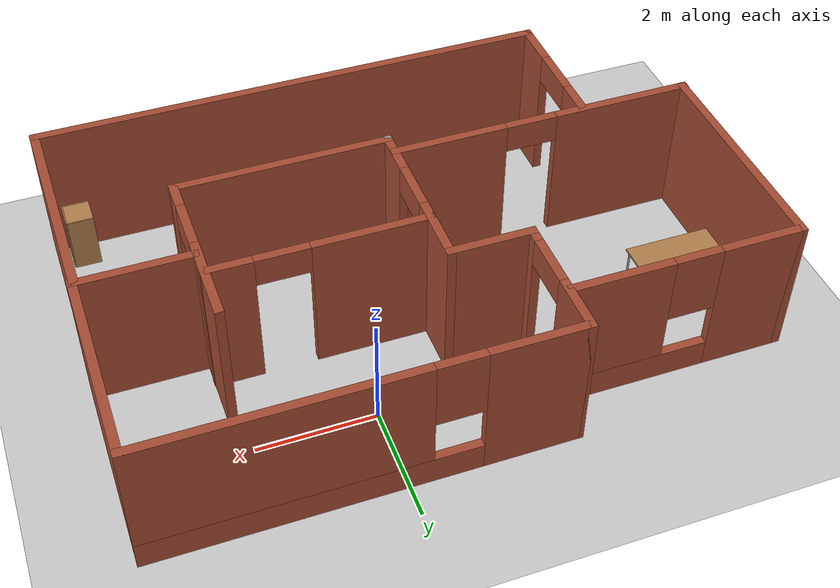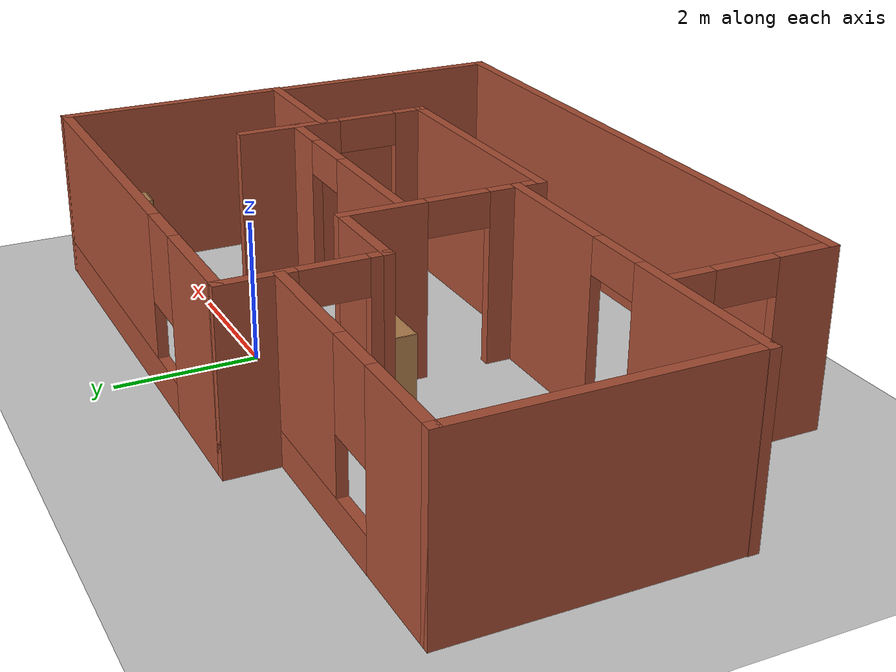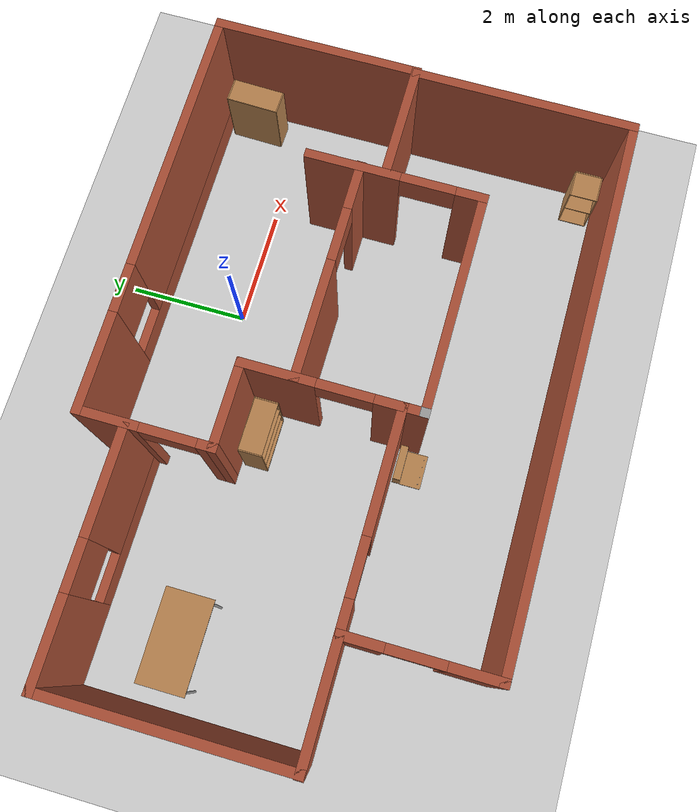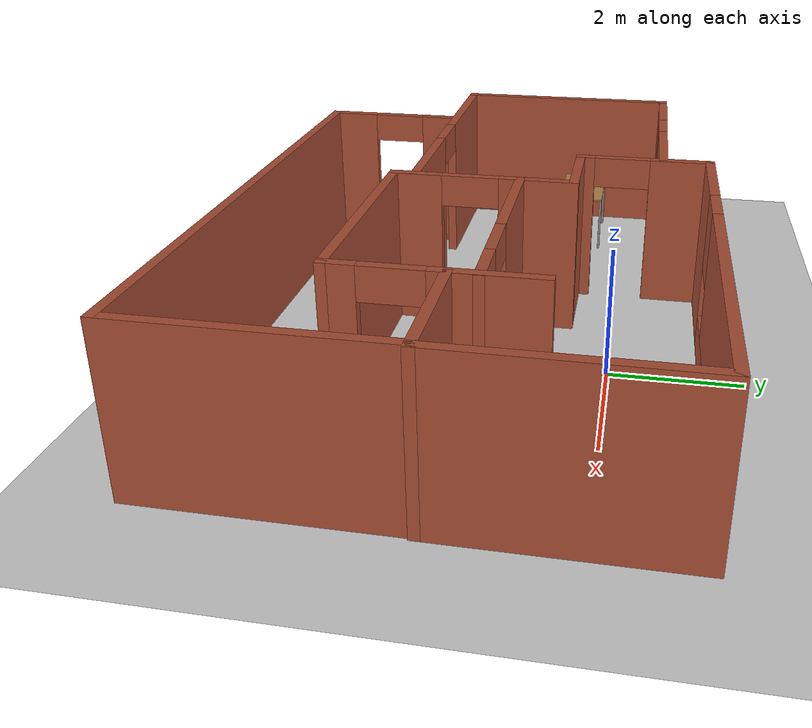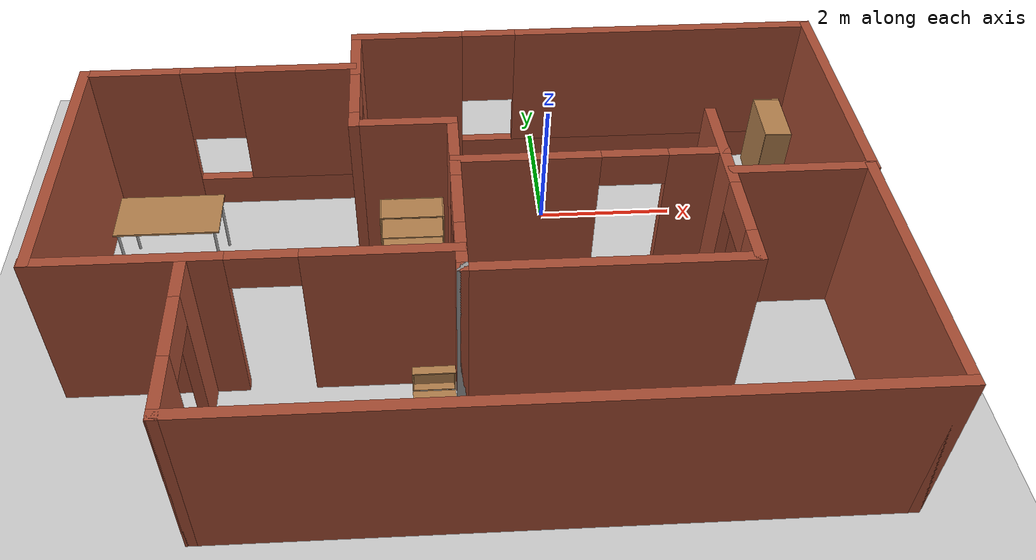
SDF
<sdf version="1.6">
 <world name="default">
  <light name="sun" type="directional">
   <pose>0 0 15 0 -0 0</pose>
   <diffuse>0.8 0.8 0.8 1</diffuse>
   <specular>0.2 0.2 0.2 1</specular>
   <attenuation>
    <range>1000</range>
    <constant>0.9</constant>
    <linear>0.01</linear>
    <quadratic>0.001</quadratic>
   </attenuation>
   <direction>-0.5 0.1 -0.9</direction>
  </light>
  <model name="ground_plane">
   <static>1</static>
   <link name="link">
    <collision name="collision">
     <geometry><plane><normal>0 0 1</normal><size>100 100</size></plane></geometry>
     <surface><friction><ode><mu>100</mu><mu2>50</mu2></ode></friction></surface>
    </collision>
    <visual name="visual">
     <transparency>1</transparency>
     <cast_shadows>0</cast_shadows>
     <geometry><plane><normal>0 0 1</normal><size>100 100</size></plane></geometry>
     <material>
      <script><uri>file://media/materials/scripts/gazebo.material</uri><name>Gazebo/Grey</name></script>
     </material>
    </visual>
   </link>
  </model>
  <gravity>0 0 -9.8</gravity>
  <magnetic_field>6e-06 2.3e-05 -4.2e-05</magnetic_field>
  <atmosphere type="adiabatic"/>
  <physics name="default_physics" default="0" type="ode">
   <max_step_size>0.001</max_step_size>
   <real_time_factor>1</real_time_factor>
   <real_time_update_rate>1000</real_time_update_rate>
  </physics>
  <scene><ambient>0.4 0.4 0.4 1</ambient><background>0.7 0.7 0.7 1</background><shadows>1</shadows></scene>
  <spherical_coordinates>
   <surface_model>EARTH_WGS84</surface_model>
   <latitude_deg>0</latitude_deg>
   <longitude_deg>0</longitude_deg>
   <elevation>0</elevation>
   <heading_deg>0</heading_deg>
  </spherical_coordinates>
  <model name="Rooms">
   <pose>-1.31501 -2.085 0 0 -0 0</pose>
   <link name="Wall_10">
    <collision name="Wall_10_Collision">
     <geometry><box><size>1.5 0.15 2.5</size></box></geometry>
     <pose>0 0 1.25 0 -0 0</pose>
    </collision>
    <visual name="Wall_10_Visual">
     <pose>0 0 1.25 0 -0 0</pose>
     <geometry><box><size>1.5 0.15 2.5</size></box></geometry>
     <material>
      <script><uri>file://media/materials/scripts/gazebo.material</uri><name>Gazebo/Bricks</name></script>
      <ambient>1 1 1 1</ambient>
     </material>
     <meta><layer>0</layer></meta>
    </visual>
    <pose>-0.789991 1.385 0 0 -0 3.14159</pose>
   </link>
   <link name="Wall_11">
    <pose>-1.46499 2.435 0 0 -0 1.5708</pose>
    <visual name="Wall_11_Visual_0">
     <pose>-0.9675 0 1.25 0 -0 0</pose>
     <geometry><box><size>0.315 0.15 2.5</size></box></geometry>
     <material>
      <script><uri>file://media/materials/scripts/gazebo.material</uri><name>Gazebo/Bricks</name></script>
      <ambient>1 1 1 1</ambient>
     </material>
     <meta><layer>0</layer></meta>
    </visual>
    <collision name="Wall_11_Collision_0">
     <geometry><box><size>0.315 0.15 2.5</size></box></geometry>
     <pose>-0.9675 0 1.25 0 -0 0</pose>
    </collision>
    <visual name="Wall_11_Visual_1">
     <pose>0.6075 0 1.25 0 -0 0</pose>
     <geometry><box><size>1.035 0.15 2.5</size></box></geometry>
     <material>
      <script><uri>file://media/materials/scripts/gazebo.material</uri><name>Gazebo/Bricks</name></script>
      <ambient>1 1 1 1</ambient>
     </material>
     <meta><layer>0</layer></meta>
    </visual>
    <collision name="Wall_11_Collision_1">
     <geometry><box><size>1.035 0.15 2.5</size></box></geometry>
     <pose>0.6075 0 1.25 0 -0 0</pose>
    </collision>
    <visual name="Wall_11_Visual_2">
     <pose>-0.36 0 2.25 0 -0 0</pose>
     <geometry><box><size>0.9 0.15 0.5</size></box></geometry>
     <material>
      <script><uri>file://media/materials/scripts/gazebo.material</uri><name>Gazebo/Bricks</name></script>
      <ambient>1 1 1 1</ambient>
     </material>
     <meta><layer>0</layer></meta>
    </visual>
    <collision name="Wall_11_Collision_2">
     <geometry><box><size>0.9 0.15 0.5</size></box></geometry>
     <pose>-0.36 0 2.25 0 -0 0</pose>
    </collision>
   </link>
   <link name="Wall_12">
    <pose>1.96001 3.485 0 0 -0 0</pose>
    <visual name="Wall_12_Visual_0">
     <pose>-2.6675 0 1.25 0 -0 0</pose>
     <geometry><box><size>1.665 0.15 2.5</size></box></geometry>
     <material>
      <script><uri>file://media/materials/scripts/gazebo.material</uri><name>Gazebo/Bricks</name></script>
      <ambient>1 1 1 1</ambient>
     </material>
     <meta><layer>0</layer></meta>
    </visual>
    <collision name="Wall_12_Collision_0">
     <geometry><box><size>1.665 0.15 2.5</size></box></geometry>
     <pose>-2.6675 0 1.25 0 -0 0</pose>
    </collision>
    <visual name="Wall_12_Visual_1">
     <pose>0.8325 0 0.25 0 -0 0</pose>
     <geometry><box><size>5.335 0.15 0.5</size></box></geometry>
     <material>
      <script><uri>file://media/materials/scripts/gazebo.material</uri><name>Gazebo/Bricks</name></script>
      <ambient>1 1 1 1</ambient>
     </material>
     <meta><layer>0</layer></meta>
    </visual>
    <collision name="Wall_12_Collision_1">
     <geometry><box><size>5.335 0.15 0.5</size></box></geometry>
     <pose>0.8325 0 0.25 0 -0 0</pose>
    </collision>
    <visual name="Wall_12_Visual_2">
     <pose>1.2325 0 1.5 0 -0 0</pose>
     <geometry><box><size>4.535 0.15 2</size></box></geometry>
     <material>
      <script><uri>file://media/materials/scripts/gazebo.material</uri><name>Gazebo/Bricks</name></script>
      <ambient>1 1 1 1</ambient>
     </material>
     <meta><layer>0</layer></meta>
    </visual>
    <collision name="Wall_12_Collision_2">
     <geometry><box><size>4.535 0.15 2</size></box></geometry>
     <pose>1.2325 0 1.5 0 -0 0</pose>
    </collision>
    <visual name="Wall_12_Visual_3">
     <pose>-1.435 0 1.9 0 -0 0</pose>
     <geometry><box><size>0.8 0.15 1.2</size></box></geometry>
     <material>
      <script><uri>file://media/materials/scripts/gazebo.material</uri><name>Gazebo/Bricks</name></script>
      <ambient>1 1 1 1</ambient>
     </material>
     <meta><layer>0</layer></meta>
    </visual>
    <collision name="Wall_12_Collision_3">
     <geometry><box><size>0.8 0.15 1.2</size></box></geometry>
     <pose>-1.435 0 1.9 0 -0 0</pose>
    </collision>
   </link>
   <link name="Wall_13">
    <collision name="Wall_13_Collision">
     <geometry><box><size>3.5 0.15 2.5</size></box></geometry>
     <pose>0 0 1.25 0 -0 0</pose>
    </collision>
    <visual name="Wall_13_Visual">
     <pose>0 0 1.25 0 -0 0</pose>
     <geometry><box><size>3.5 0.15 2.5</size></box></geometry>
     <material>
      <script><uri>file://media/materials/scripts/gazebo.material</uri><name>Gazebo/Bricks</name></script>
      <ambient>1 1 1 1</ambient>
     </material>
     <meta><layer>0</layer></meta>
    </visual>
    <pose>5.38501 1.81 0 0 0 -1.5708</pose>
   </link>
   <link name="Wall_14">
    <collision name="Wall_14_Collision">
     <geometry><box><size>2 0.15 2.5</size></box></geometry>
     <pose>0 0 1.25 0 -0 0</pose>
    </collision>
    <visual name="Wall_14_Visual">
     <pose>0 0 1.25 0 -0 0</pose>
     <geometry><box><size>2 0.15 2.5</size></box></geometry>
     <material>
      <script><uri>file://media/materials/scripts/gazebo.material</uri><name>Gazebo/Bricks</name></script>
      <ambient>1 1 1 1</ambient>
     </material>
     <meta><layer>0</layer></meta>
    </visual>
    <pose>4.46001 0.135 0 0 -0 3.14159</pose>
   </link>
   <link name="Wall_16">
    <pose>1.69501 0.545 0 0 -0 0</pose>
    <visual name="Wall_16_Visual_0">
     <pose>-0.8675 0 1.25 0 -0 0</pose>
     <geometry><box><size>2.015 0.15 2.5</size></box></geometry>
     <material>
      <script><uri>file://media/materials/scripts/gazebo.material</uri><name>Gazebo/Bricks</name></script>
      <ambient>1 1 1 1</ambient>
     </material>
     <meta><layer>0</layer></meta>
    </visual>
    <collision name="Wall_16_Collision_0">
     <geometry><box><size>2.015 0.15 2.5</size></box></geometry>
     <pose>-0.8675 0 1.25 0 -0 0</pose>
    </collision>
    <visual name="Wall_16_Visual_1">
     <pose>1.4575 0 1.25 0 -0 0</pose>
     <geometry><box><size>0.835 0.15 2.5</size></box></geometry>
     <material>
      <script><uri>file://media/materials/scripts/gazebo.material</uri><name>Gazebo/Bricks</name></script>
      <ambient>1 1 1 1</ambient>
     </material>
     <meta><layer>0</layer></meta>
    </visual>
    <collision name="Wall_16_Collision_1">
     <geometry><box><size>0.835 0.15 2.5</size></box></geometry>
     <pose>1.4575 0 1.25 0 -0 0</pose>
    </collision>
    <visual name="Wall_16_Visual_2">
     <pose>0.59 0 2.25 0 -0 0</pose>
     <geometry><box><size>0.9 0.15 0.5</size></box></geometry>
     <material>
      <script><uri>file://media/materials/scripts/gazebo.material</uri><name>Gazebo/Bricks</name></script>
      <ambient>1 1 1 1</ambient>
     </material>
     <meta><layer>0</layer></meta>
    </visual>
    <collision name="Wall_16_Collision_2">
     <geometry><box><size>0.9 0.15 0.5</size></box></geometry>
     <pose>0.59 0 2.25 0 -0 0</pose>
    </collision>
   </link>
   <link name="Wall_19">
    <pose>-2.75499 -1.125 0 0 -0 3.14159</pose>
    <visual name="Wall_19_Visual_0">
     <pose>-1.68751 0 1.25 0 -0 0</pose>
     <geometry><box><size>2.03502 0.15 2.5</size></box></geometry>
     <material>
      <script><uri>file://media/materials/scripts/gazebo.material</uri><name>Gazebo/Bricks</name></script>
      <ambient>1 1 1 1</ambient>
     </material>
     <meta><layer>0</layer></meta>
    </visual>
    <collision name="Wall_19_Collision_0">
     <geometry><box><size>2.03502 0.15 2.5</size></box></geometry>
     <pose>-1.68751 0 1.25 0 -0 0</pose>
    </collision>
    <visual name="Wall_19_Visual_1">
     <pose>1.46751 0 1.25 0 -0 0</pose>
     <geometry><box><size>2.47502 0.15 2.5</size></box></geometry>
     <material>
      <script><uri>file://media/materials/scripts/gazebo.material</uri><name>Gazebo/Bricks</name></script>
      <ambient>1 1 1 1</ambient>
     </material>
     <meta><layer>0</layer></meta>
    </visual>
    <collision name="Wall_19_Collision_1">
     <geometry><box><size>2.47502 0.15 2.5</size></box></geometry>
     <pose>1.46751 0 1.25 0 -0 0</pose>
    </collision>
    <visual name="Wall_19_Visual_2">
     <pose>-0.22 0 2.25 0 -0 0</pose>
     <geometry><box><size>0.9 0.15 0.5</size></box></geometry>
     <material>
      <script><uri>file://media/materials/scripts/gazebo.material</uri><name>Gazebo/Bricks</name></script>
      <ambient>1 1 1 1</ambient>
     </material>
     <meta><layer>0</layer></meta>
    </visual>
    <collision name="Wall_19_Collision_2">
     <geometry><box><size>0.9 0.15 0.5</size></box></geometry>
     <pose>-0.22 0 2.25 0 -0 0</pose>
    </collision>
   </link>
   <link name="Wall_2">
    <pose>3.48501 -0.04 0 0 0 -1.5708</pose>
    <visual name="Wall_2_Visual_0">
     <pose>-0.7125 0 1.25 0 -0 0</pose>
     <geometry><box><size>1.575 0.15 2.5</size></box></geometry>
     <material>
      <script><uri>file://media/materials/scripts/gazebo.material</uri><name>Gazebo/Bricks</name></script>
      <ambient>1 1 1 1</ambient>
     </material>
     <meta><layer>0</layer></meta>
    </visual>
    <collision name="Wall_2_Collision_0">
     <geometry><box><size>1.575 0.15 2.5</size></box></geometry>
     <pose>-0.7125 0 1.25 0 -0 0</pose>
    </collision>
    <visual name="Wall_2_Visual_1">
     <pose>1.2375 0 1.25 0 -0 0</pose>
     <geometry><box><size>0.525 0.15 2.5</size></box></geometry>
     <material>
      <script><uri>file://media/materials/scripts/gazebo.material</uri><name>Gazebo/Bricks</name></script>
      <ambient>1 1 1 1</ambient>
     </material>
     <meta><layer>0</layer></meta>
    </visual>
    <collision name="Wall_2_Collision_1">
     <geometry><box><size>0.525 0.15 2.5</size></box></geometry>
     <pose>1.2375 0 1.25 0 -0 0</pose>
    </collision>
    <visual name="Wall_2_Visual_2">
     <pose>0.525 0 2.25 0 -0 0</pose>
     <geometry><box><size>0.9 0.15 0.5</size></box></geometry>
     <material>
      <script><uri>file://media/materials/scripts/gazebo.material</uri><name>Gazebo/Bricks</name></script>
      <ambient>1 1 1 1</ambient>
     </material>
     <meta><layer>0</layer></meta>
    </visual>
    <collision name="Wall_2_Collision_2">
     <geometry><box><size>0.9 0.15 0.5</size></box></geometry>
     <pose>0.525 0 2.25 0 -0 0</pose>
    </collision>
   </link>
   <link name="Wall_20">
    <collision name="Wall_20_Collision">
     <geometry><box><size>4 0.15 2.5</size></box></geometry>
     <pose>0 0 1.25 0 -0 0</pose>
    </collision>
    <visual name="Wall_20_Visual">
     <pose>0 0 1.25 0 -0 0</pose>
     <geometry><box><size>4 0.15 2.5</size></box></geometry>
     <material>
      <script><uri>file://media/materials/scripts/gazebo.material</uri><name>Gazebo/Bricks</name></script>
      <ambient>1 1 1 1</ambient>
     </material>
     <meta><layer>0</layer></meta>
    </visual>
    <pose>-5.37499 0.81 0 0 -0 1.5708</pose>
   </link>
   <link name="Wall_22">
    <pose>-3.44999 2.735 0 0 -0 0</pose>
    <visual name="Wall_22_Visual_0">
     <pose>-1.2775 0 1.25 0 -0 0</pose>
     <geometry><box><size>1.445 0.15 2.5</size></box></geometry>
     <material>
      <script><uri>file://media/materials/scripts/gazebo.material</uri><name>Gazebo/Bricks</name></script>
      <ambient>1 1 1 1</ambient>
     </material>
     <meta><layer>0</layer></meta>
    </visual>
    <collision name="Wall_22_Collision_0">
     <geometry><box><size>1.445 0.15 2.5</size></box></geometry>
     <pose>-1.2775 0 1.25 0 -0 0</pose>
    </collision>
    <visual name="Wall_22_Visual_1">
     <pose>0.7225 0 0.25 0 -0 0</pose>
     <geometry><box><size>2.555 0.15 0.5</size></box></geometry>
     <material>
      <script><uri>file://media/materials/scripts/gazebo.material</uri><name>Gazebo/Bricks</name></script>
      <ambient>1 1 1 1</ambient>
     </material>
     <meta><layer>0</layer></meta>
    </visual>
    <collision name="Wall_22_Collision_1">
     <geometry><box><size>2.555 0.15 0.5</size></box></geometry>
     <pose>0.7225 0 0.25 0 -0 0</pose>
    </collision>
    <visual name="Wall_22_Visual_2">
     <pose>1.1225 0 1.5 0 -0 0</pose>
     <geometry><box><size>1.755 0.15 2</size></box></geometry>
     <material>
      <script><uri>file://media/materials/scripts/gazebo.material</uri><name>Gazebo/Bricks</name></script>
      <ambient>1 1 1 1</ambient>
     </material>
     <meta><layer>0</layer></meta>
    </visual>
    <collision name="Wall_22_Collision_2">
     <geometry><box><size>1.755 0.15 2</size></box></geometry>
     <pose>1.1225 0 1.5 0 -0 0</pose>
    </collision>
    <visual name="Wall_22_Visual_3">
     <pose>-0.155 0 1.9 0 -0 0</pose>
     <geometry><box><size>0.8 0.15 1.2</size></box></geometry>
     <material>
      <script><uri>file://media/materials/scripts/gazebo.material</uri><name>Gazebo/Bricks</name></script>
      <ambient>1 1 1 1</ambient>
     </material>
     <meta><layer>0</layer></meta>
    </visual>
    <collision name="Wall_22_Collision_3">
     <geometry><box><size>0.8 0.15 1.2</size></box></geometry>
     <pose>-0.155 0 1.9 0 -0 0</pose>
    </collision>
   </link>
   <link name="Wall_24">
    <pose>-3.49499 -2.31 0 0 0 -1.5708</pose>
    <visual name="Wall_24_Visual_0">
     <pose>-0.8925 0 1.25 0 -0 0</pose>
     <geometry><box><size>0.715 0.15 2.5</size></box></geometry>
     <material>
      <script><uri>file://media/materials/scripts/gazebo.material</uri><name>Gazebo/Bricks</name></script>
      <ambient>1 1 1 1</ambient>
     </material>
     <meta><layer>0</layer></meta>
    </visual>
    <collision name="Wall_24_Collision_0">
     <geometry><box><size>0.715 0.15 2.5</size></box></geometry>
     <pose>-0.8925 0 1.25 0 -0 0</pose>
    </collision>
    <visual name="Wall_24_Visual_1">
     <pose>0.8075 0 1.25 0 -0 0</pose>
     <geometry><box><size>0.885 0.15 2.5</size></box></geometry>
     <material>
      <script><uri>file://media/materials/scripts/gazebo.material</uri><name>Gazebo/Bricks</name></script>
      <ambient>1 1 1 1</ambient>
     </material>
     <meta><layer>0</layer></meta>
    </visual>
    <collision name="Wall_24_Collision_1">
     <geometry><box><size>0.885 0.15 2.5</size></box></geometry>
     <pose>0.8075 0 1.25 0 -0 0</pose>
    </collision>
    <visual name="Wall_24_Visual_2">
     <pose>-0.085 0 2.25 0 -0 0</pose>
     <geometry><box><size>0.9 0.15 0.5</size></box></geometry>
     <material>
      <script><uri>file://media/materials/scripts/gazebo.material</uri><name>Gazebo/Bricks</name></script>
      <ambient>1 1 1 1</ambient>
     </material>
     <meta><layer>0</layer></meta>
    </visual>
    <collision name="Wall_24_Collision_2">
     <geometry><box><size>0.9 0.15 0.5</size></box></geometry>
     <pose>-0.085 0 2.25 0 -0 0</pose>
    </collision>
   </link>
   <link name="Wall_25">
    <collision name="Wall_25_Collision">
     <geometry><box><size>9 0.15 2.5</size></box></geometry>
     <pose>0 0 1.25 0 -0 0</pose>
    </collision>
    <visual name="Wall_25_Visual">
     <pose>0 0 1.25 0 -0 0</pose>
     <geometry><box><size>9 0.15 2.5</size></box></geometry>
     <material>
      <script><uri>file://media/materials/scripts/gazebo.material</uri><name>Gazebo/Bricks</name></script>
      <ambient>1 1 1 1</ambient>
     </material>
     <meta><layer>0</layer></meta>
    </visual>
    <pose>0.930009 -3.485 0 0 -0 0</pose>
   </link>
   <link name="Wall_26">
    <collision name="Wall_26_Collision">
     <geometry><box><size>3.75 0.15 2.5</size></box></geometry>
     <pose>0 0 1.25 0 -0 0</pose>
    </collision>
    <visual name="Wall_26_Visual">
     <pose>0 0 1.25 0 -0 0</pose>
     <geometry><box><size>3.75 0.15 2.5</size></box></geometry>
     <material>
      <script><uri>file://media/materials/scripts/gazebo.material</uri><name>Gazebo/Bricks</name></script>
      <ambient>1 1 1 1</ambient>
     </material>
     <meta><layer>0</layer></meta>
    </visual>
    <pose>5.35501 -1.685 0 0 -0 1.5708</pose>
   </link>
   <link name="Wall_3">
    <collision name="Wall_3_Collision">
     <geometry><box><size>3.75 0.15 2.5</size></box></geometry>
     <pose>0 0 1.25 0 -0 0</pose>
    </collision>
    <visual name="Wall_3_Visual">
     <pose>0 0 1.25 0 -0 0</pose>
     <geometry><box><size>3.75 0.15 2.5</size></box></geometry>
     <material>
      <script><uri>file://media/materials/scripts/gazebo.material</uri><name>Gazebo/Bricks</name></script>
      <ambient>1 1 1 1</ambient>
     </material>
     <meta><layer>0</layer></meta>
    </visual>
    <pose>1.68501 -1.465 0 0 -0 3.14159</pose>
   </link>
   <link name="Wall_4">
    <collision name="Wall_4_Collision">
     <geometry><box><size>0.15 0.15 2.5</size></box></geometry>
     <pose>0 0 1.25 0 -0 0</pose>
    </collision>
    <visual name="Wall_4_Visual">
     <pose>0 0 1.25 0 -0 0</pose>
     <geometry><box><size>0.15 0.15 2.5</size></box></geometry>
     <material>
      <script><uri>file://media/materials/scripts/gazebo.material</uri><name>Gazebo/Grey</name></script>
      <ambient>1 1 1 1</ambient>
     </material>
     <meta><layer>0</layer></meta>
    </visual>
    <pose>-0.114991 -1.465 0 0 -0 0</pose>
   </link>
   <link name="Wall_5">
    <collision name="Wall_5_Collision">
     <geometry><box><size>0.15 0.15 2.5</size></box></geometry>
     <pose>0 0 1.25 0 -0 0</pose>
    </collision>
    <visual name="Wall_5_Visual">
     <pose>0 0 1.25 0 -0 0</pose>
     <geometry><box><size>0.15 0.15 2.5</size></box></geometry>
     <material>
      <script><uri>file://media/materials/scripts/gazebo.material</uri><name>Gazebo/Grey</name></script>
      <ambient>1 1 1 1</ambient>
     </material>
     <meta><layer>0</layer></meta>
    </visual>
    <pose>-0.114991 -1.465 0 0 -0 0</pose>
   </link>
   <link name="Wall_6">
    <collision name="Wall_6_Collision">
     <geometry><box><size>0.15 0.15 2.5</size></box></geometry>
     <pose>0 0 1.25 0 -0 0</pose>
    </collision>
    <visual name="Wall_6_Visual">
     <pose>0 0 1.25 0 -0 0</pose>
     <geometry><box><size>0.15 0.15 2.5</size></box></geometry>
     <material>
      <script><uri>file://media/materials/scripts/gazebo.material</uri><name>Gazebo/Grey</name></script>
      <ambient>1 1 1 1</ambient>
     </material>
     <meta><layer>0</layer></meta>
    </visual>
    <pose>-0.114991 -1.465 0 0 -0 0</pose>
   </link>
   <link name="Wall_8">
    <pose>-0.114991 -0.04 0 0 0 -1.5708</pose>
    <visual name="Wall_8_Visual_0">
     <pose>-0.8775 0 1.25 0 -0 0</pose>
     <geometry><box><size>1.245 0.15 2.5</size></box></geometry>
     <material>
      <script><uri>file://media/materials/scripts/gazebo.material</uri><name>Gazebo/Bricks</name></script>
      <ambient>1 1 1 1</ambient>
     </material>
     <meta><layer>0</layer></meta>
    </visual>
    <collision name="Wall_8_Collision_0">
     <geometry><box><size>1.245 0.15 2.5</size></box></geometry>
     <pose>-0.8775 0 1.25 0 -0 0</pose>
    </collision>
    <visual name="Wall_8_Visual_1">
     <pose>1.0725 0 1.25 0 -0 0</pose>
     <geometry><box><size>0.855 0.15 2.5</size></box></geometry>
     <material>
      <script><uri>file://media/materials/scripts/gazebo.material</uri><name>Gazebo/Bricks</name></script>
      <ambient>1 1 1 1</ambient>
     </material>
     <meta><layer>0</layer></meta>
    </visual>
    <collision name="Wall_8_Collision_1">
     <geometry><box><size>0.855 0.15 2.5</size></box></geometry>
     <pose>1.0725 0 1.25 0 -0 0</pose>
    </collision>
    <visual name="Wall_8_Visual_2">
     <pose>0.195 0 2.25 0 -0 0</pose>
     <geometry><box><size>0.9 0.15 0.5</size></box></geometry>
     <material>
      <script><uri>file://media/materials/scripts/gazebo.material</uri><name>Gazebo/Bricks</name></script>
      <ambient>1 1 1 1</ambient>
     </material>
     <meta><layer>0</layer></meta>
    </visual>
    <collision name="Wall_8_Collision_2">
     <geometry><box><size>0.9 0.15 0.5</size></box></geometry>
     <pose>0.195 0 2.25 0 -0 0</pose>
    </collision>
   </link>
   <static>1</static>
  </model>
  <model name="bookshelf">
   <static>1</static>
   <link name="link">
    <inertial><mass>1</mass></inertial>
    <collision name="back">
     <pose>0 0.005 0.6 0 -0 0</pose>
     <geometry><box><size>0.9 0.01 1.2</size></box></geometry>
    </collision>
    <visual name="visual1">
     <pose>0 0.005 0.6 0 -0 0</pose>
     <geometry><box><size>0.9 0.01 1.2</size></box></geometry>
     <material>
      <script><uri>file://media/materials/scripts/gazebo.material</uri><name>Gazebo/Wood</name></script>
     </material>
    </visual>
    <collision name="left_side">
     <pose>0.45 -0.195 0.6 0 -0 0</pose>
     <geometry><box><size>0.02 0.4 1.2</size></box></geometry>
    </collision>
    <visual name="visual2">
     <pose>0.45 -0.195 0.6 0 -0 0</pose>
     <geometry><box><size>0.02 0.4 1.2</size></box></geometry>
     <material>
      <script><uri>file://media/materials/scripts/gazebo.material</uri><name>Gazebo/Wood</name></script>
     </material>
    </visual>
    <collision name="right_side">
     <pose>-0.45 -0.195 0.6 0 -0 0</pose>
     <geometry><box><size>0.02 0.4 1.2</size></box></geometry>
    </collision>
    <visual name="visual3">
     <pose>-0.45 -0.195 0.6 0 -0 0</pose>
     <geometry><box><size>0.02 0.4 1.2</size></box></geometry>
     <material>
      <script><uri>file://media/materials/scripts/gazebo.material</uri><name>Gazebo/Wood</name></script>
     </material>
    </visual>
    <collision name="bottom">
     <pose>0 -0.195 0.03 0 -0 0</pose>
     <geometry><box><size>0.88 0.4 0.06</size></box></geometry>
    </collision>
    <visual name="visual4">
     <pose>0 -0.195 0.03 0 -0 0</pose>
     <geometry><box><size>0.88 0.4 0.06</size></box></geometry>
     <material>
      <script><uri>file://media/materials/scripts/gazebo.material</uri><name>Gazebo/Wood</name></script>
     </material>
    </visual>
    <collision name="top">
     <pose>0 -0.195 1.19 0 -0 0</pose>
     <geometry><box><size>0.88 0.4 0.02</size></box></geometry>
    </collision>
    <visual name="visual5">
     <pose>0 -0.195 1.19 0 -0 0</pose>
     <geometry><box><size>0.88 0.4 0.02</size></box></geometry>
     <material>
      <script><uri>file://media/materials/scripts/gazebo.material</uri><name>Gazebo/Wood</name></script>
     </material>
    </visual>
    <collision name="low_shelf">
     <pose>0 -0.195 0.43 0 -0 0</pose>
     <geometry><box><size>0.88 0.4 0.02</size></box></geometry>
    </collision>
    <visual name="visual6">
     <pose>0 -0.195 0.43 0 -0 0</pose>
     <geometry><box><size>0.88 0.4 0.02</size></box></geometry>
     <material>
      <script><uri>file://media/materials/scripts/gazebo.material</uri><name>Gazebo/Wood</name></script>
     </material>
    </visual>
    <collision name="high_shelf">
     <pose>0 -0.195 0.8 0 -0 0</pose>
     <geometry><box><size>0.88 0.4 0.02</size></box></geometry>
    </collision>
    <visual name="visual7">
     <pose>0 -0.195 0.8 0 -0 0</pose>
     <geometry><box><size>0.88 0.4 0.02</size></box></geometry>
     <material>
      <script><uri>file://media/materials/scripts/gazebo.material</uri><name>Gazebo/Wood</name></script>
     </material>
    </visual>
   </link>
   <pose>-2.03476 -0.844137 0 0 -0 0</pose>
  </model>
  <model name="bookshelf_0">
   <static>1</static>
   <link name="link">
    <inertial><mass>1</mass></inertial>
    <collision name="back">
     <pose>0 0.005 0.6 0 -0 0</pose>
     <geometry><box><size>0.9 0.01 1.2</size></box></geometry>
    </collision>
    <visual name="visual1">
     <pose>0 0.005 0.6 0 -0 0</pose>
     <geometry><box><size>0.9 0.01 1.2</size></box></geometry>
     <material>
      <script><uri>file://media/materials/scripts/gazebo.material</uri><name>Gazebo/Wood</name></script>
     </material>
    </visual>
    <collision name="left_side">
     <pose>0.45 -0.195 0.6 0 -0 0</pose>
     <geometry><box><size>0.02 0.4 1.2</size></box></geometry>
    </collision>
    <visual name="visual2">
     <pose>0.45 -0.195 0.6 0 -0 0</pose>
     <geometry><box><size>0.02 0.4 1.2</size></box></geometry>
     <material>
      <script><uri>file://media/materials/scripts/gazebo.material</uri><name>Gazebo/Wood</name></script>
     </material>
    </visual>
    <collision name="right_side">
     <pose>-0.45 -0.195 0.6 0 -0 0</pose>
     <geometry><box><size>0.02 0.4 1.2</size></box></geometry>
    </collision>
    <visual name="visual3">
     <pose>-0.45 -0.195 0.6 0 -0 0</pose>
     <geometry><box><size>0.02 0.4 1.2</size></box></geometry>
     <material>
      <script><uri>file://media/materials/scripts/gazebo.material</uri><name>Gazebo/Wood</name></script>
     </material>
    </visual>
    <collision name="bottom">
     <pose>0 -0.195 0.03 0 -0 0</pose>
     <geometry><box><size>0.88 0.4 0.06</size></box></geometry>
    </collision>
    <visual name="visual4">
     <pose>0 -0.195 0.03 0 -0 0</pose>
     <geometry><box><size>0.88 0.4 0.06</size></box></geometry>
     <material>
      <script><uri>file://media/materials/scripts/gazebo.material</uri><name>Gazebo/Wood</name></script>
     </material>
    </visual>
    <collision name="top">
     <pose>0 -0.195 1.19 0 -0 0</pose>
     <geometry><box><size>0.88 0.4 0.02</size></box></geometry>
    </collision>
    <visual name="visual5">
     <pose>0 -0.195 1.19 0 -0 0</pose>
     <geometry><box><size>0.88 0.4 0.02</size></box></geometry>
     <material>
      <script><uri>file://media/materials/scripts/gazebo.material</uri><name>Gazebo/Wood</name></script>
     </material>
    </visual>
    <collision name="low_shelf">
     <pose>0 -0.195 0.43 0 -0 0</pose>
     <geometry><box><size>0.88 0.4 0.02</size></box></geometry>
    </collision>
    <visual name="visual6">
     <pose>0 -0.195 0.43 0 -0 0</pose>
     <geometry><box><size>0.88 0.4 0.02</size></box></geometry>
     <material>
      <script><uri>file://media/materials/scripts/gazebo.material</uri><name>Gazebo/Wood</name></script>
     </material>
    </visual>
    <collision name="high_shelf">
     <pose>0 -0.195 0.8 0 -0 0</pose>
     <geometry><box><size>0.88 0.4 0.02</size></box></geometry>
    </collision>
    <visual name="visual7">
     <pose>0 -0.195 0.8 0 -0 0</pose>
     <geometry><box><size>0.88 0.4 0.02</size></box></geometry>
     <material>
      <script><uri>file://media/materials/scripts/gazebo.material</uri><name>Gazebo/Wood</name></script>
     </material>
    </visual>
   </link>
   <pose>3.46824 0.800509 0 0 -0 1.54171</pose>
  </model>
  <model name="table">
   <static>1</static>
   <link name="link">
    <collision name="surface">
     <pose>0 0 1 0 -0 0</pose>
     <geometry><box><size>1.5 0.8 0.03</size></box></geometry>
     <surface><friction><ode><mu>0.6</mu><mu2>0.6</mu2></ode></friction></surface>
    </collision>
    <visual name="visual1">
     <pose>0 0 1 0 -0 0</pose>
     <geometry><box><size>1.5 0.8 0.03</size></box></geometry>
     <material>
      <script><uri>file://media/materials/scripts/gazebo.material</uri><name>Gazebo/Wood</name></script>
     </material>
    </visual>
    <collision name="front_left_leg">
     <pose>0.68 0.38 0.5 0 -0 0</pose>
     <geometry><cylinder><radius>0.02</radius><length>1</length></cylinder></geometry>
    </collision>
    <visual name="front_left_leg">
     <pose>0.68 0.38 0.5 0 -0 0</pose>
     <geometry><cylinder><radius>0.02</radius><length>1</length></cylinder></geometry>
     <material>
      <script><uri>file://media/materials/scripts/gazebo.material</uri><name>Gazebo/Grey</name></script>
     </material>
    </visual>
    <collision name="front_right_leg">
     <pose>0.68 -0.38 0.5 0 -0 0</pose>
     <geometry><cylinder><radius>0.02</radius><length>1</length></cylinder></geometry>
    </collision>
    <visual name="front_right_leg">
     <pose>0.68 -0.38 0.5 0 -0 0</pose>
     <geometry><cylinder><radius>0.02</radius><length>1</length></cylinder></geometry>
     <material>
      <script><uri>file://media/materials/scripts/gazebo.material</uri><name>Gazebo/Grey</name></script>
     </material>
    </visual>
    <collision name="back_right_leg">
     <pose>-0.68 -0.38 0.5 0 -0 0</pose>
     <geometry><cylinder><radius>0.02</radius><length>1</length></cylinder></geometry>
    </collision>
    <visual name="back_right_leg">
     <pose>-0.68 -0.38 0.5 0 -0 0</pose>
     <geometry><cylinder><radius>0.02</radius><length>1</length></cylinder></geometry>
     <material>
      <script><uri>file://media/materials/scripts/gazebo.material</uri><name>Gazebo/Grey</name></script>
     </material>
    </visual>
    <collision name="back_left_leg">
     <pose>-0.68 0.38 0.5 0 -0 0</pose>
     <geometry><cylinder><radius>0.02</radius><length>1</length></cylinder></geometry>
    </collision>
    <visual name="back_left_leg">
     <pose>-0.68 0.38 0.5 0 -0 0</pose>
     <geometry><cylinder><radius>0.02</radius><length>1</length></cylinder></geometry>
     <material>
      <script><uri>file://media/materials/scripts/gazebo.material</uri><name>Gazebo/Grey</name></script>
     </material>
    </visual>
   </link>
   <pose>-5.54727 -0.797129 0 0 -0 0</pose>
  </model>
  <model name="cabinet">
   <static>1</static>
   <link name="cabinet_bottom_plate">
    <inertial>
     <pose>0 0 -1 0 -0 0</pose>
     <inertia><ixx>2.05</ixx><ixy>0</ixy><ixz>0</ixz><iyy>2.05</iyy><iyz>0</iyz><izz>2.05</izz></inertia>
     <mass>25</mass>
    </inertial>
    <collision name="cabinet_bottom_plate_geom">
     <pose>0 0 0.01 0 -0 0</pose>
     <geometry><box><size>0.45 0.45 0.02</size></box></geometry>
    </collision>
    <visual name="cabinet_bottom_plate_geom_visual">
     <pose>0 0 0.01 0 -0 0</pose>
     <geometry><box><size>0.45 0.45 0.02</size></box></geometry>
     <material>
      <script><uri>file://media/materials/scripts/gazebo.material</uri><name>Gazebo/Wood</name></script>
     </material>
    </visual>
    <collision name="cabinet_bottom_plate_geom_cabinet_back_plate">
     <pose>0.235 0 0.51 0 -0 0</pose>
     <geometry><box><size>0.02 0.45 1.02</size></box></geometry>
    </collision>
    <visual name="cabinet_bottom_plate_geom_cabinet_back_plate_visual">
     <pose>0.235 0 0.51 0 -0 0</pose>
     <geometry><box><size>0.02 0.45 1.02</size></box></geometry>
     <material>
      <script><uri>file://media/materials/scripts/gazebo.material</uri><name>Gazebo/Wood</name></script>
     </material>
    </visual>
    <collision name="cabinet_bottom_plate_geom_cabinet_left_plate">
     <pose>0 0.235 0.51 0 -0 0</pose>
     <geometry><box><size>0.45 0.02 1.02</size></box></geometry>
    </collision>
    <visual name="cabinet_bottom_plate_geom_cabinet_left_plate_visual">
     <pose>0 0.235 0.51 0 -0 0</pose>
     <geometry><box><size>0.45 0.02 1.02</size></box></geometry>
     <material>
      <script><uri>file://media/materials/scripts/gazebo.material</uri><name>Gazebo/Wood</name></script>
     </material>
    </visual>
    <collision name="cabinet_bottom_plate_geom_cabinet_middle_plate">
     <pose>0 0 0.51 0 -0 0</pose>
     <geometry><box><size>0.45 0.45 0.02</size></box></geometry>
    </collision>
    <visual name="cabinet_bottom_plate_geom_cabinet_middle_plate_visual">
     <pose>0 0 0.51 0 -0 0</pose>
     <geometry><box><size>0.45 0.45 0.02</size></box></geometry>
     <material>
      <script><uri>file://media/materials/scripts/gazebo.material</uri><name>Gazebo/Wood</name></script>
     </material>
    </visual>
    <collision name="cabinet_bottom_plate_geom_cabinet_right_plate">
     <pose>0 -0.235 0.51 0 -0 0</pose>
     <geometry><box><size>0.45 0.02 1.02</size></box></geometry>
    </collision>
    <visual name="cabinet_bottom_plate_geom_cabinet_right_plate_visual">
     <pose>0 -0.235 0.51 0 -0 0</pose>
     <geometry><box><size>0.45 0.02 1.02</size></box></geometry>
     <material>
      <script><uri>file://media/materials/scripts/gazebo.material</uri><name>Gazebo/Wood</name></script>
     </material>
    </visual>
    <collision name="cabinet_bottom_plate_geom_cabinet_top_plate">
     <pose>0 0 1.01 0 -0 0</pose>
     <geometry><box><size>0.45 0.45 0.02</size></box></geometry>
    </collision>
    <visual name="cabinet_bottom_plate_geom_cabinet_top_plate_visual">
     <pose>0 0 1.01 0 -0 0</pose>
     <geometry><box><size>0.45 0.45 0.02</size></box></geometry>
     <material>
      <script><uri>file://media/materials/scripts/gazebo.material</uri><name>Gazebo/Wood</name></script>
     </material>
    </visual>
   </link>
   <pose>3.62895 -5.20597 0 0 -0 0</pose>
  </model>
  <model name="wooden_case">
   <link name="base">
    <pose>0 0 0.024 0 -0 0</pose>
    <inertial>
     <pose>-0.022184 0 0.171592 0 -0 0</pose>
     <mass>3.96264</mass>
     <inertia>
      <ixx>0.213536</ixx>
      <ixy>0</ixy>
      <ixz>0.000779377</ixz>
      <iyy>0.0708943</iyy>
      <iyz>0</iyz>
      <izz>0.154604</izz>
     </inertia>
    </inertial>
    <collision name="collision_back">
     <pose>-0.053975 0 0.1778 0 -0 0</pose>
     <geometry><box><size>0.01905 0.5461 0.3175</size></box></geometry>
     <surface>
      <contact>
       <poissons_ratio>0.347</poissons_ratio>
       <elastic_modulus>8.8e+09</elastic_modulus>
       <ode><kp>100000</kp><kd>100</kd><max_vel>100</max_vel><min_depth>0.001</min_depth></ode>
      </contact>
      <friction>
       <torsional>
        <coefficient>1</coefficient>
        <use_patch_radius>0</use_patch_radius>
        <surface_radius>0.01</surface_radius>
       </torsional>
      </friction>
     </surface>
    </collision>
    <visual name="visual_back">
     <pose>-0.053975 0 0.1778 0 -0 0</pose>
     <geometry><box><size>0.01905 0.5461 0.3175</size></box></geometry>
     <material>
      <script><uri>file://media/materials/scripts/gazebo.material</uri><name>Gazebo/Wood</name></script>
     </material>
    </visual>
    <collision name="collision_bottom">
     <pose>0 0 0.009525 0 -0 0</pose>
     <geometry><box><size>0.127 0.5842 0.01905</size></box></geometry>
     <surface>
      <contact>
       <poissons_ratio>0.347</poissons_ratio>
       <elastic_modulus>8.8e+09</elastic_modulus>
       <ode><kp>100000</kp><kd>100</kd><max_vel>100</max_vel><min_depth>0.001</min_depth></ode>
      </contact>
      <friction>
       <torsional>
        <coefficient>1</coefficient>
        <use_patch_radius>0</use_patch_radius>
        <surface_radius>0.01</surface_radius>
       </torsional>
      </friction>
     </surface>
    </collision>
    <visual name="visual_bottom">
     <pose>0 0 0.009525 0 -0 0</pose>
     <geometry><box><size>0.127 0.5842 0.01905</size></box></geometry>
     <material>
      <script><uri>file://media/materials/scripts/gazebo.material</uri><name>Gazebo/Wood</name></script>
     </material>
    </visual>
    <collision name="collision_top">
     <pose>0 0 0.346075 0 -0 0</pose>
     <geometry><box><size>0.127 0.5842 0.01905</size></box></geometry>
     <surface>
      <contact>
       <poissons_ratio>0.347</poissons_ratio>
       <elastic_modulus>8.8e+09</elastic_modulus>
       <ode><kp>100000</kp><kd>100</kd><max_vel>100</max_vel><min_depth>0.001</min_depth></ode>
      </contact>
      <friction>
       <torsional>
        <coefficient>1</coefficient>
        <use_patch_radius>0</use_patch_radius>
        <surface_radius>0.01</surface_radius>
       </torsional>
      </friction>
     </surface>
    </collision>
    <visual name="visual_top">
     <pose>0 0 0.346075 0 -0 0</pose>
     <geometry><box><size>0.127 0.5842 0.01905</size></box></geometry>
     <material>
      <script><uri>file://media/materials/scripts/gazebo.material</uri><name>Gazebo/Wood</name></script>
     </material>
    </visual>
    <collision name="collision_left">
     <pose>0 -0.282575 0.1778 0 -0 0</pose>
     <geometry><box><size>0.127 0.01905 0.3175</size></box></geometry>
     <surface>
      <contact>
       <poissons_ratio>0.347</poissons_ratio>
       <elastic_modulus>8.8e+09</elastic_modulus>
       <ode><kp>100000</kp><kd>100</kd><max_vel>100</max_vel><min_depth>0.001</min_depth></ode>
      </contact>
      <friction>
       <torsional>
        <coefficient>1</coefficient>
        <use_patch_radius>0</use_patch_radius>
        <surface_radius>0.01</surface_radius>
       </torsional>
      </friction>
     </surface>
    </collision>
    <visual name="visual_left">
     <pose>0 -0.282575 0.1778 0 -0 0</pose>
     <geometry><box><size>0.127 0.01905 0.3175</size></box></geometry>
     <material>
      <script><uri>file://media/materials/scripts/gazebo.material</uri><name>Gazebo/Wood</name></script>
     </material>
    </visual>
    <collision name="collision_right">
     <pose>0 0.282575 0.1778 0 -0 0</pose>
     <geometry><box><size>0.127 0.01905 0.3175</size></box></geometry>
     <surface>
      <contact>
       <poissons_ratio>0.347</poissons_ratio>
       <elastic_modulus>8.8e+09</elastic_modulus>
       <ode><kp>100000</kp><kd>100</kd><max_vel>100</max_vel><min_depth>0.001</min_depth></ode>
      </contact>
      <friction>
       <torsional>
        <coefficient>1</coefficient>
        <use_patch_radius>0</use_patch_radius>
        <surface_radius>0.01</surface_radius>
       </torsional>
      </friction>
     </surface>
    </collision>
    <visual name="visual_right">
     <pose>0 0.282575 0.1778 0 -0 0</pose>
     <geometry><box><size>0.127 0.01905 0.3175</size></box></geometry>
     <material>
      <script><uri>file://media/materials/scripts/gazebo.material</uri><name>Gazebo/Wood</name></script>
     </material>
    </visual>
    <collision name="collision_block_left">
     <pose>0.0095 -0.2151 -0.012 0 -0 0</pose>
     <geometry><box><size>0.108 0.05 0.024</size></box></geometry>
     <surface>
      <contact>
       <poissons_ratio>0.347</poissons_ratio>
       <elastic_modulus>8.8e+09</elastic_modulus>
       <ode><kp>100000</kp><kd>100</kd><max_vel>100</max_vel><min_depth>0.001</min_depth></ode>
      </contact>
      <friction>
       <torsional>
        <coefficient>1</coefficient>
        <use_patch_radius>0</use_patch_radius>
        <surface_radius>0.01</surface_radius>
       </torsional>
      </friction>
     </surface>
    </collision>
    <visual name="visual_block_left">
     <pose>0.0095 -0.2151 -0.012 0 -0 0</pose>
     <geometry><box><size>0.108 0.05 0.024</size></box></geometry>
     <material>
      <script><uri>file://media/materials/scripts/gazebo.material</uri><name>Gazebo/Wood</name></script>
     </material>
    </visual>
    <collision name="collision_block_right">
     <pose>0.0095 0.2151 -0.012 0 -0 0</pose>
     <geometry><box><size>0.108 0.05 0.024</size></box></geometry>
     <surface>
      <contact>
       <poissons_ratio>0.347</poissons_ratio>
       <elastic_modulus>8.8e+09</elastic_modulus>
       <ode><kp>100000</kp><kd>100</kd><max_vel>100</max_vel><min_depth>0.001</min_depth></ode>
      </contact>
      <friction>
       <torsional>
        <coefficient>1</coefficient>
        <use_patch_radius>0</use_patch_radius>
        <surface_radius>0.01</surface_radius>
       </torsional>
      </friction>
     </surface>
    </collision>
    <visual name="visual_block_right">
     <pose>0.0095 0.2151 -0.012 0 -0 0</pose>
     <geometry><box><size>0.108 0.05 0.024</size></box></geometry>
     <material>
      <script><uri>file://media/materials/scripts/gazebo.material</uri><name>Gazebo/Wood</name></script>
     </material>
    </visual>
   </link>
   <link name="lid">
    <pose>0.243775 0 0.009525 0 -0 0</pose>
    <inertial>
     <mass>1.97874</mass>
     <inertia>
      <ixx>0.0563367</ixx>
      <ixy>0</ixy>
      <ixz>0</ixz>
      <iyy>0.020911</iyy>
      <iyz>0</iyz>
      <izz>0.0771281</izz>
     </inertia>
    </inertial>
    <collision name="collision">
     <geometry><box><size>0.3556 0.5842 0.01905</size></box></geometry>
     <surface>
      <contact>
       <poissons_ratio>0.347</poissons_ratio>
       <elastic_modulus>8.8e+09</elastic_modulus>
       <ode><kp>100000</kp><kd>100</kd><max_vel>100</max_vel><min_depth>0.001</min_depth></ode>
      </contact>
      <friction>
       <torsional>
        <coefficient>1</coefficient>
        <use_patch_radius>0</use_patch_radius>
        <surface_radius>0.01</surface_radius>
       </torsional>
      </friction>
     </surface>
    </collision>
    <visual name="visual">
     <geometry><box><size>0.3556 0.5842 0.01905</size></box></geometry>
     <material>
      <script><uri>file://media/materials/scripts/gazebo.material</uri><name>Gazebo/Wood</name></script>
     </material>
    </visual>
    <visual name="tee_nut_1">
     <pose>0.122 -0.216 0 0 -0 0</pose>
     <geometry><cylinder><radius>0.00635</radius><length>0.0192405</length></cylinder></geometry>
     <material>
      <script><uri>file://media/materials/scripts/gazebo.material</uri><name>Gazebo/Grey</name></script>
     </material>
    </visual>
    <visual name="tee_nut_2">
     <pose>0.122 -0.088 0 0 -0 0</pose>
     <geometry><cylinder><radius>0.00635</radius><length>0.0192405</length></cylinder></geometry>
     <material>
      <script><uri>file://media/materials/scripts/gazebo.material</uri><name>Gazebo/Grey</name></script>
     </material>
    </visual>
    <visual name="tee_nut_3">
     <pose>0.122 0.088 0 0 -0 0</pose>
     <geometry><cylinder><radius>0.00635</radius><length>0.0192405</length></cylinder></geometry>
     <material>
      <script><uri>file://media/materials/scripts/gazebo.material</uri><name>Gazebo/Grey</name></script>
     </material>
    </visual>
    <visual name="tee_nut_4">
     <pose>0.122 0.216 0 0 -0 0</pose>
     <geometry><cylinder><radius>0.00635</radius><length>0.0192405</length></cylinder></geometry>
     <material>
      <script><uri>file://media/materials/scripts/gazebo.material</uri><name>Gazebo/Grey</name></script>
     </material>
    </visual>
   </link>
   <joint name="lid_hinge" type="revolute">
    <pose>-0.1778 0 0.01905 0 -0 0</pose>
    <parent>base</parent>
    <child>lid</child>
    <axis>
     <xyz>0 1 0</xyz>
     <limit><upper>0.523599</upper><lower>-1.5708</lower></limit>
     <use_parent_model_frame>0</use_parent_model_frame>
     <dynamics><spring_reference>0</spring_reference><spring_stiffness>0</spring_stiffness></dynamics>
    </axis>
   </joint>
   <pose>-1.80898 -3.3737 -0.001057 0 -0.000426 -1.56511</pose>
  </model>
 </world>
</sdf>
